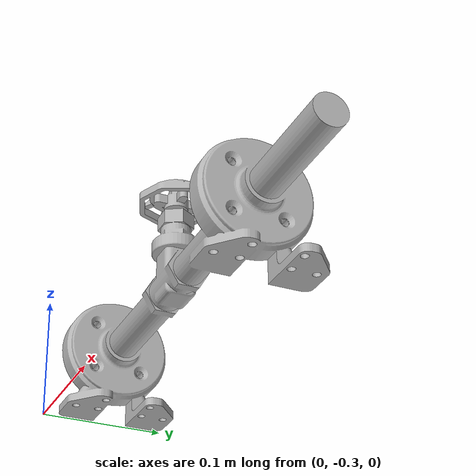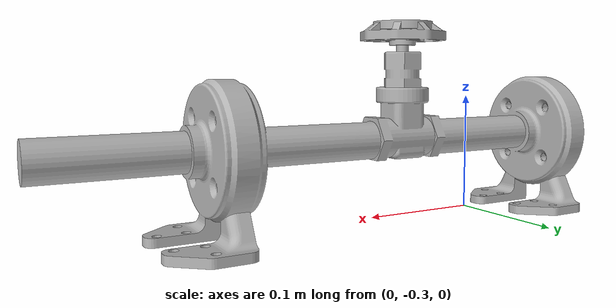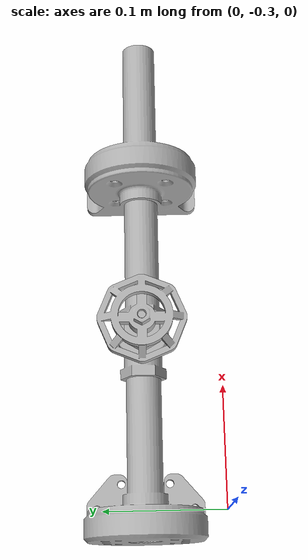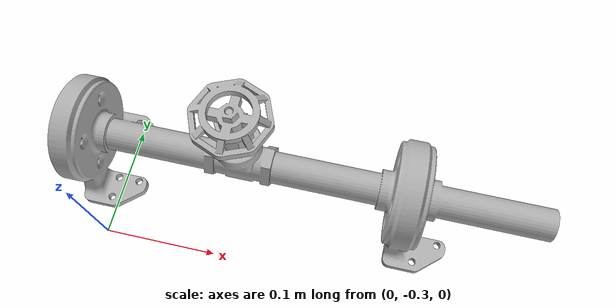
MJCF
<mujoco model="handwheel_valve">
  <option iterations="50" timestep="0.001" solver="PGS" gravity="0 0 -9.81" />

  <compiler angle="radian" meshdir="assets" eulerseq="zyx" autolimits="true" />

  <default>
    <joint limited="true" damping="0.01" armature="0.001" frictionloss="0.0" />
    <geom condim="4" contype="1" conaffinity="15" friction="0.9 0.2 0.2" solref="0.001 2" />
    <motor ctrllimited="true" />
    <equality solref="0.001 2" />
    <default class="visualgeom">
      <geom material="visualgeom" condim="1" contype="0" conaffinity="0" />
    </default>
  </default>

  <asset>
    <mesh name="base_link" file="base_link.stl" scale="0.001 0.001 0.001" />
    <mesh name="valve" file="valve.stl" scale="0.001 0.001 0.001" />
    <material name="visualgeom" rgba="0.5 0.9 0.2 1" />
  </asset>

  <worldbody>
    <camera name="fixed" pos="0 -3.0 0.6795626954691983" xyaxes="1 0 0 0 0 1" />
    <camera name="track" mode="trackcom" pos="0 -3.0 0.6795626954691983" xyaxes="1 0 0 0 0 1" />
    <body name="root" pos="0 0 0" quat="1 0 0 0">
      <site name="imu" size="0.01" pos="0 0 0" rgba="0 0 0 0"/>
      <geom type="mesh" rgba="0.7 0.7 0.7 1" mesh="base_link" contype="1" conaffinity="0" density="0" group="1" class="visualgeom" />
      <geom type="mesh" rgba="0.7 0.7 0.7 1" mesh="base_link" mass="250" solimp="0.9 0.99 0.001" solref="0.01 1"/>
      <body name="valve" pos="0.11685 -0.23495 0.136595">
        <inertial pos="0 0 0.0131149" quat="0.5 0.5 -0.5 0.5" mass="0.117699" diaginertia="4.6e-05 2.6e-05 2.6e-05" />
        <joint name="Revolute" pos="0 0 0" axis="0 0 1"
       range="0 4.71239"
       damping="0.01"
       armature="0.001"
       frictionloss="0.0"
       actuatorfrcrange="-100 100" />

        <geom pos="-0.11685 0.23495 -0.136595" quat="1 0 0 0" type="mesh" rgba="0.7 0.7 0.7 1" mesh="valve" contype="1" conaffinity="0" density="0" group="1" class="visualgeom" />
        <geom type="mesh" rgba="0.7 0.7 0.7 1" mesh="valve" pos="-0.11685 0.23495 -0.136595" quat="1 0 0 0"  solimp="0.9 0.99 0.001" solref="0.01 1"/>
      </body>
    </body>
  </worldbody>

</mujoco>
